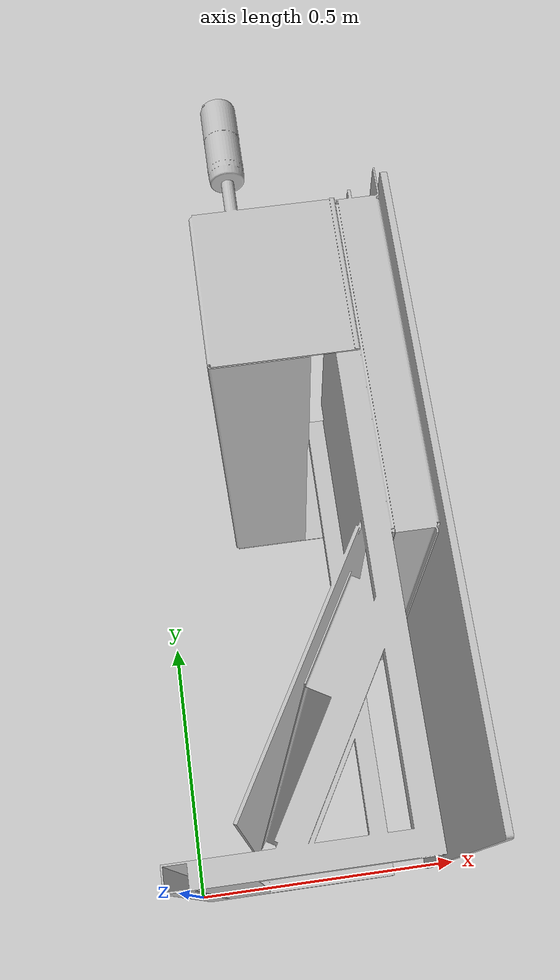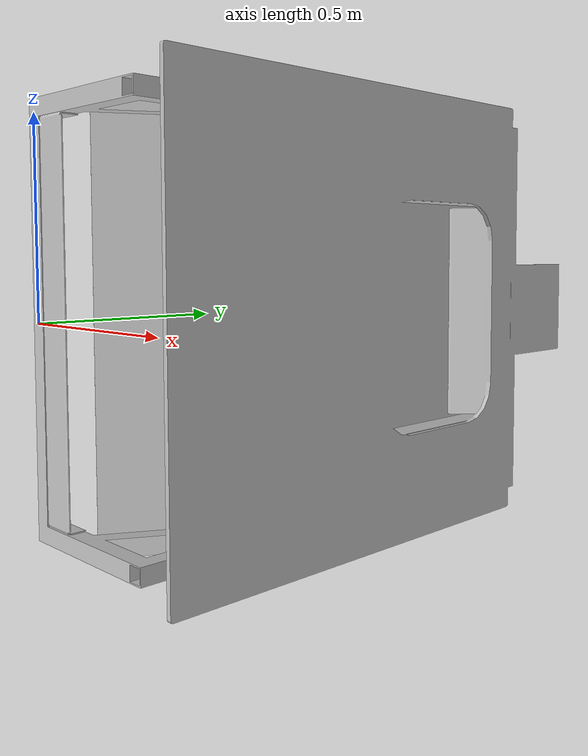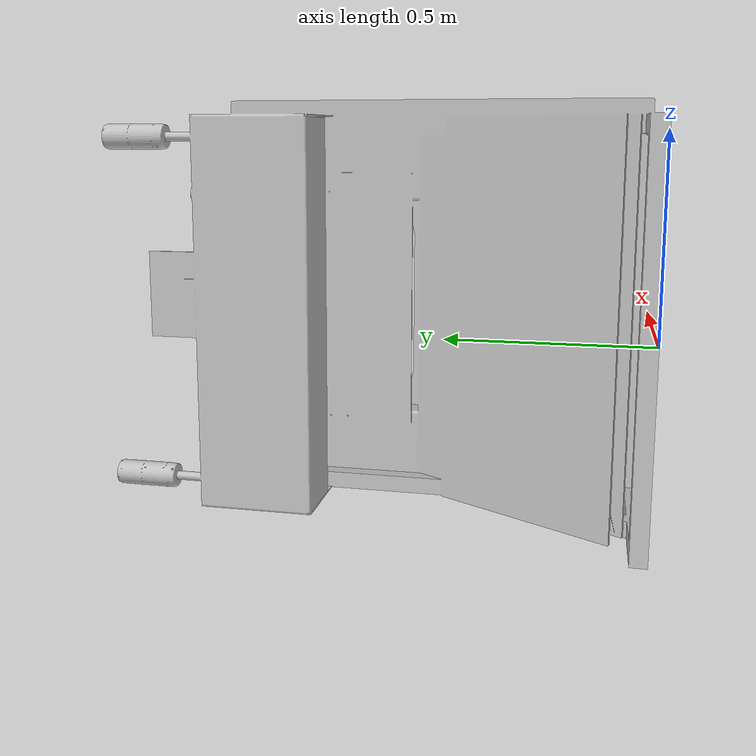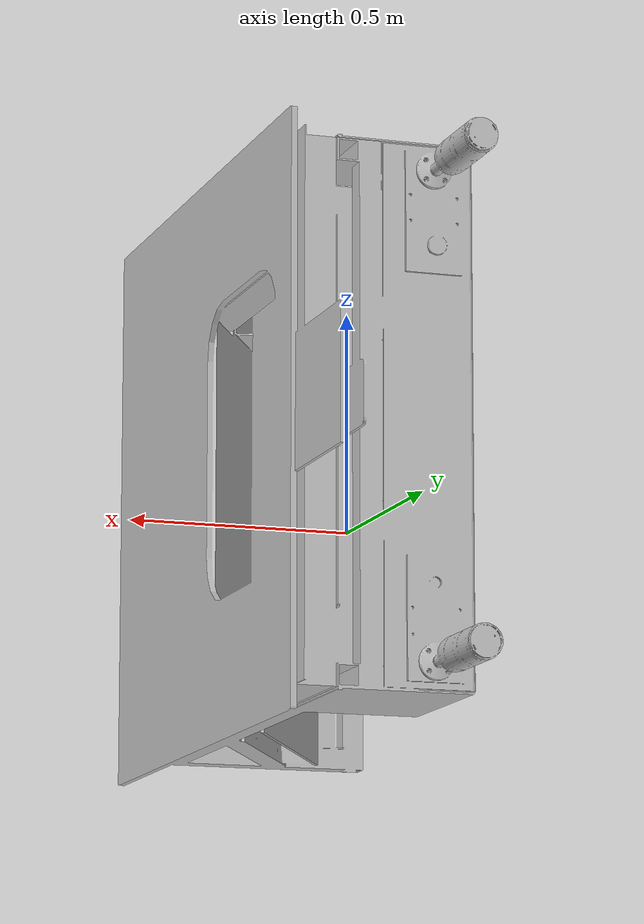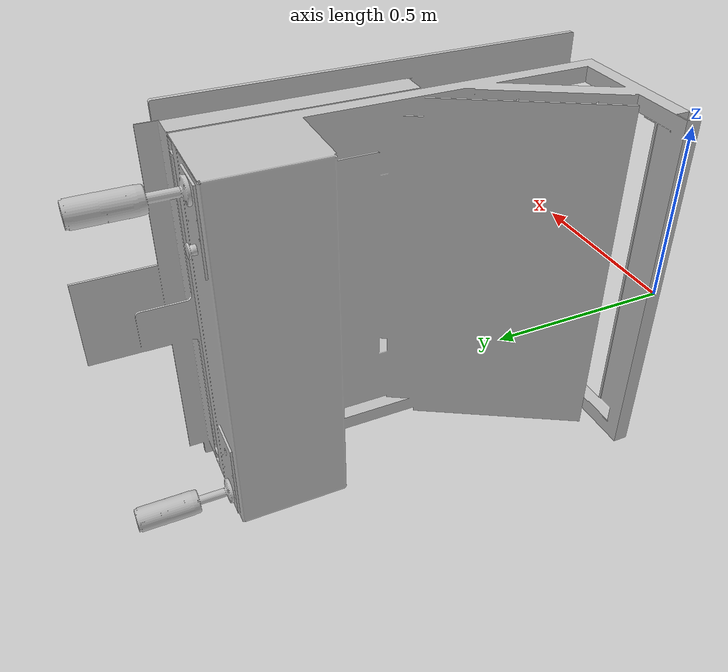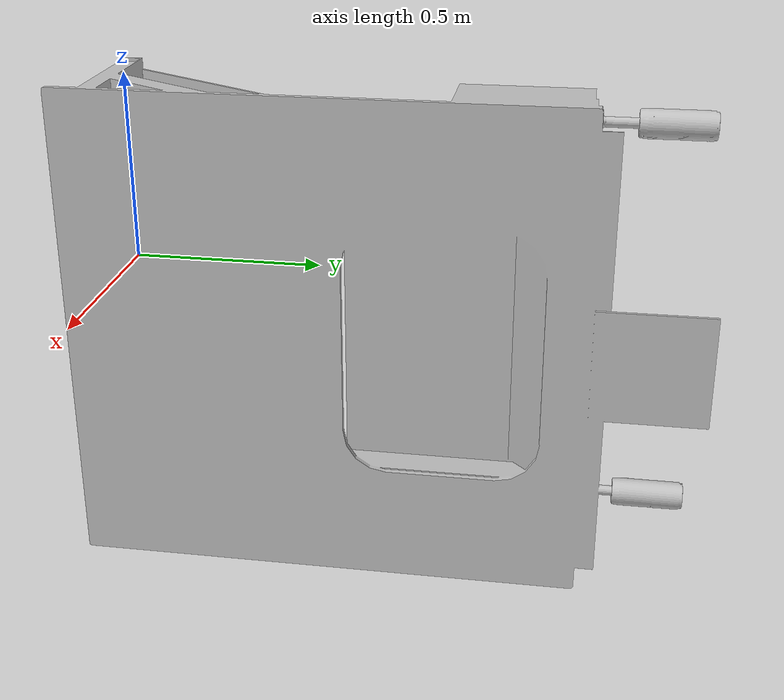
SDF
<?xml version="1.0" encoding="utf-8"?>
<sdf version="1.5">
  <model name="Amp">
    <pose>0 0 3.97782935063241E-16 0 0 0</pose>
    <plugin name="clock" filename="libgz_clock.so">
      <topic>/gazebo/frc/time</topic>
    </plugin>
    <link name="Body">
      <gravity>1</gravity>
      <self_collide>0</self_collide>
      <pose>0.369587554102736 0.66420198005975 -0.000262919075205738 0 0 0</pose>
      <must_be_base_link>1</must_be_base_link>
      <velocity_decay>
        <linear>0</linear>
        <angular>0</angular>
      </velocity_decay>
      <inertial>
        <mass>56.3605980169294</mass>
        <pose>0 0 0 0 0 0</pose>
        <inertia>
          <ixx>9.3881908501809</ixx>
          <ixy>0.674669544716013</ixy>
          <ixz>0.00500373477179442</ixz>
          <iyy>4.05791167033076</iyy>
          <iyz>0.0205131616643311</iyz>
          <izz>7.48207372921884</izz>
        </inertia>
      </inertial>
      <collision name="Body_collision">
        <pose>0.151112445897359 -0.664201980059749 0.0510629190752027 0 0 0</pose>
        <geometry>
          <mesh>
            <scale>1 1 1</scale>
            <uri>model://Amp/meshes/Body_col.STL</uri>
          </mesh>
        </geometry>
        <surface>
          <contact>
            <ode />
          </contact>
          <friction>
            <ode>
              <mu>0</mu>
              <mu2>0</mu2>
            </ode>
          </friction>
        </surface>
      </collision>
      <visual name="Body_visual">
        <pose>0.151112445897359 -0.664201980059749 0.0510629190752027 0 0 0</pose>
        <material>
          <ambient>0.752941176470588 0.752941176470588 0.752941176470588 1</ambient>
          <diffuse>0.752941176470588 0.752941176470588 0.752941176470588 1</diffuse>
        </material>
        <geometry>
          <mesh>
            <scale>1 1 1</scale>
            <uri>model://Amp/meshes/Body.STL</uri>
          </mesh>
        </geometry>
      </visual>
    </link>
  </model>
</sdf>
